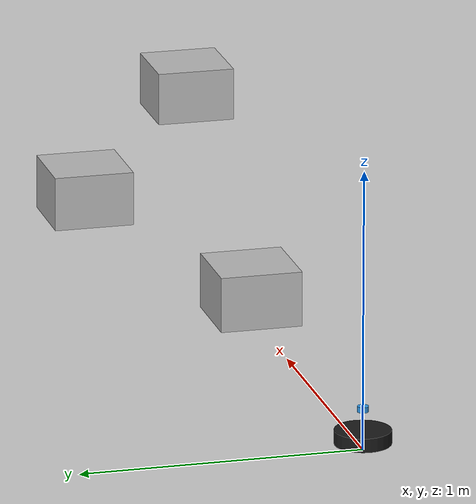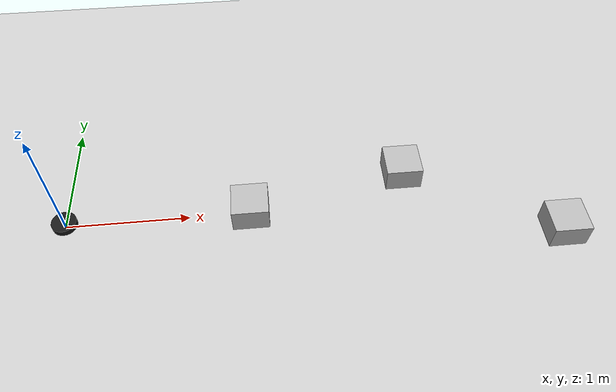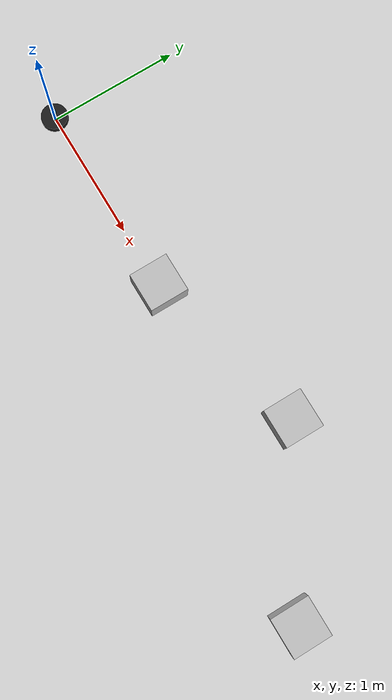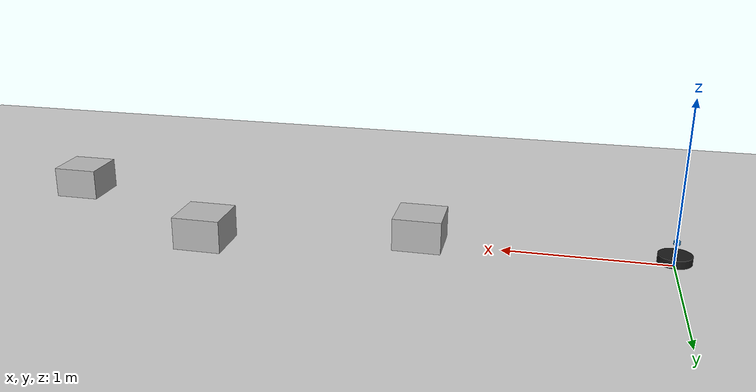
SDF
<?xml version="1.0" ?>
<sdf version="1.6">
  <world name="aoa_world">

    <!-- الأرض والضوء -->
    <include><uri>model://ground_plane</uri></include>
    <include><uri>model://sun</uri></include>

    <!-- الروبوت -->
    <model name="aoa_bot">
      <pose>0 0 0.05 0 0 0</pose>
      <static>false</static>

      <!-- القاعدة -->
      <link name="base">
        <inertial><mass>1.0</mass></inertial>
        <collision name="col">
          <geometry><cylinder><radius>0.10</radius><length>0.05</length></cylinder></geometry>
          <surface>
            <friction><ode><mu>2.0</mu><mu2>2.0</mu2></ode></friction>
            <bounce><restitution_coefficient>0.0</restitution_coefficient><threshold>1e10</threshold></bounce>
          </surface>
        </collision>
        <visual name="vis">
          <geometry><cylinder><radius>0.10</radius><length>0.05</length></cylinder></geometry>
          <material><ambient>0.1 0.1 0.1 1</ambient></material>
        </visual>
      </link>

      <!-- العجلة اليسرى -->
      <link name="left_wheel">
        <inertial><mass>0.3</mass></inertial>
        <collision name="col">
          <geometry><cylinder><radius>0.05</radius><length>0.02</length></cylinder></geometry>
          <surface>
            <friction><ode><mu>2.0</mu><mu2>2.0</mu2></ode></friction>
            <bounce><restitution_coefficient>0.0</restitution_coefficient><threshold>1e10</threshold></bounce>
            <contact><ode><kp>5e4</kp><kd>1.0</kd></ode></contact>
          </surface>
        </collision>
        <visual name="vis"><geometry><cylinder><radius>0.05</radius><length>0.02</length></cylinder></geometry></visual>
      </link>

      <!-- العجلة اليمنى -->
      <link name="right_wheel">
        <inertial><mass>0.3</mass></inertial>
        <collision name="col">
          <geometry><cylinder><radius>0.05</radius><length>0.02</length></cylinder></geometry>
          <surface>
            <friction><ode><mu>2.0</mu><mu2>2.0</mu2></ode></friction>
            <bounce><restitution_coefficient>0.0</restitution_coefficient><threshold>1e10</threshold></bounce>
            <contact><ode><kp>5e4</kp><kd>1.0</kd></ode></contact>
          </surface>
        </collision>
        <visual name="vis"><geometry><cylinder><radius>0.05</radius><length>0.02</length></cylinder></geometry></visual>
      </link>

      <!-- مفاصل العجلات: محور Y + damping -->
      <joint name="left_hinge" type="revolute">
        <parent>base</parent><child>left_wheel</child>
        <pose>0 0.12 -0.05 0 0 0</pose>
        <axis><xyz>0 1 0</xyz><limit><lower>-1e16</lower><upper>1e16</upper></limit><dynamics><damping>0.8</damping></dynamics></axis>
      </joint>
      <joint name="right_hinge" type="revolute">
        <parent>base</parent><child>right_wheel</child>
        <pose>0 -0.12 -0.05 0 0 0</pose>
        <axis><xyz>0 1 0</xyz><limit><lower>-1e16</lower><upper>1e16</upper></limit><dynamics><damping>0.8</damping></dynamics></axis>
      </joint>

      <!-- LiDAR مثبت فوق القاعدة -->
      <link name="lidar_link">
        <pose>0 0 0.10 0 0 0</pose>
        <inertial><mass>0.05</mass></inertial>
        <visual name="lidar_vis">
          <geometry><cylinder><radius>0.02</radius><length>0.02</length></cylinder></geometry>
          <material><ambient>0.2 0.6 0.9 1</ambient></material>
        </visual>

        <!-- المستشعر: Ray LiDAR -->
        <sensor name="aoa_lidar" type="ray">
          <always_on>true</always_on>
          <update_rate>15</update_rate>
          <visualize>true</visualize> <!-- يبين شعاعات الليدار في GUI -->
          <topic>~/aoa_lidar</topic>

          <ray>
            <scan>
              <!-- 270° FOV، 270 عيّنة -->
              <horizontal>
                <samples>270</samples>
                <resolution>1</resolution>
                <min_angle>-2.35619</min_angle>
                <max_angle> 2.35619</max_angle>
              </horizontal>
            </scan>
            <range>
              <min>0.05</min>
              <max>6.0</max>
              <resolution>0.01</resolution>
            </range>
            <noise> <!-- ضوضاء بسيطة واقعية -->
              <type>gaussian</type>
              <mean>0.0</mean>
              <stddev>0.01</stddev>
            </noise>
          </ray>
        </sensor>
      </link>

      <!-- ثبّت الليدار بالقاعدة -->
      <joint name="lidar_mount" type="fixed">
        <parent>base</parent>
        <child>lidar_link</child>
      </joint>

      <!-- البلجن (نفسه) -->
      <plugin name="aoa_plugin" filename="libaoa_plugin.so"/>
    </model>

    <!-- عقبات -->
    <model name="box1">
      <pose>1.5 0 0.05 0 0 0</pose><static>true</static>
      <link name="link">
        <collision name="collision"><geometry><box><size>0.3 0.3 0.3</size></box></geometry></collision>
        <visual name="visual"><geometry><box><size>0.3 0.3 0.3</size></box></geometry></visual>
      </link>
    </model>
    <model name="box2">
      <pose>2.8 0.3 0.05 0 0 0</pose><static>true</static>
      <link name="link">
        <collision name="collision"><geometry><box><size>0.3 0.3 0.3</size></box></geometry></collision>
        <visual name="visual"><geometry><box><size>0.3 0.3 0.3</size></box></geometry></visual>
      </link>
    </model>
    <model name="box3">
      <pose>4.0 -0.4 0.05 0 0 0</pose><static>true</static>
      <link name="link">
        <collision name="collision"><geometry><box><size>0.3 0.3 0.3</size></box></geometry></collision>
        <visual name="visual"><geometry><box><size>0.3 0.3 0.3</size></box></geometry></visual>
      </link>
    </model>

  </world>
</sdf>
